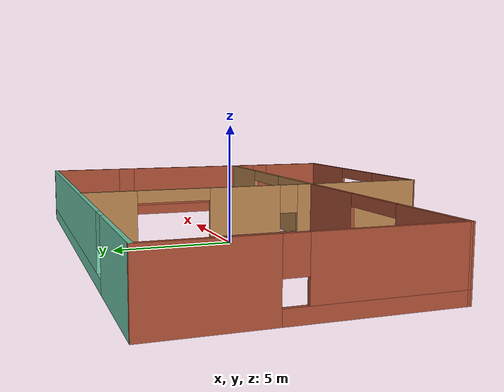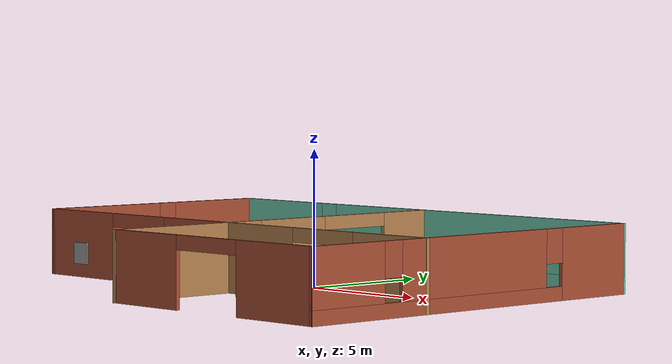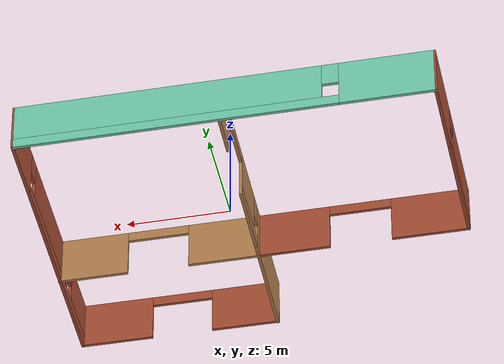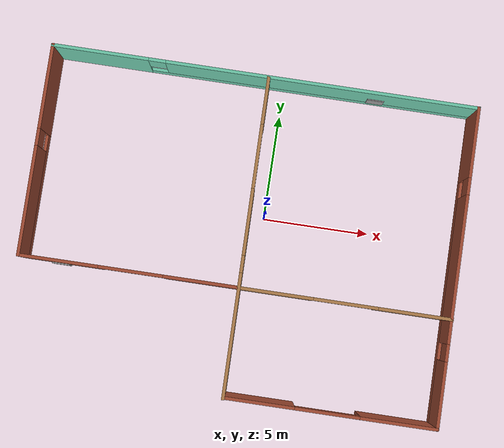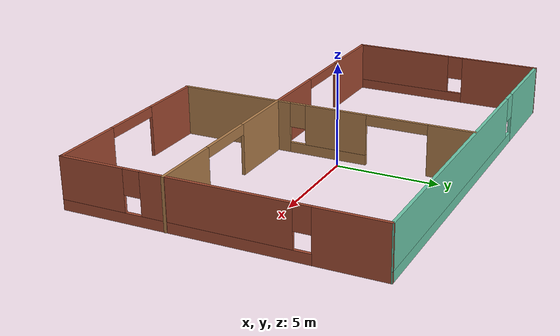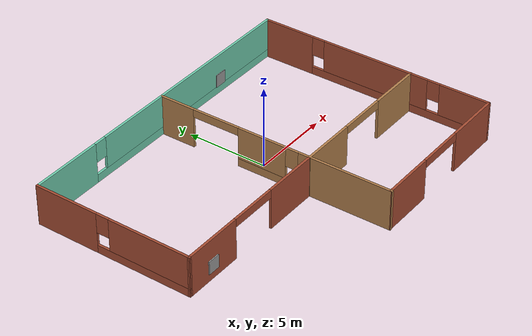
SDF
<?xml version='1.0'?>
<sdf version='1.6'>
  <model name='Building'>
    <pose frame=''>-0.878904 -1.07872 0 0 -0 0</pose>
    <link name='Wall_0'>
      <pose frame=''>-0.035596 7.44422 0 0 -0 -0.001555</pose>
      <visual name='Wall_0_Visual_0'>
        <pose frame=''>-7.76242 0 1.25 0 -0 0</pose>
        <geometry>
          <box>
            <size>4.564 0.15 2.5</size>
          </box>
        </geometry>
        <material>
          <script>
            <uri>file://media/materials/scripts/gazebo.material</uri>
            <name>Gazebo/Grey</name>
          </script>
          <ambient>0.435294 0.796078 0.67451 1</ambient>
        </material>
        <meta>
          <layer>0</layer>
        </meta>
      </visual>
      <collision name='Wall_0_Collision_0'>
        <geometry>
          <box>
            <size>4.564 0.15 2.5</size>
          </box>
        </geometry>
        <pose frame=''>-7.76242 0 1.25 0 -0 0</pose>
      </collision>
      <visual name='Wall_0_Visual_1'>
        <pose frame=''>2.282 0 0.25 0 -0 0</pose>
        <geometry>
          <box>
            <size>15.5248 0.15 0.5</size>
          </box>
        </geometry>
        <material>
          <script>
            <uri>file://media/materials/scripts/gazebo.material</uri>
            <name>Gazebo/Grey</name>
          </script>
          <ambient>0.435294 0.796078 0.67451 1</ambient>
        </material>
        <meta>
          <layer>0</layer>
        </meta>
      </visual>
      <collision name='Wall_0_Collision_1'>
        <geometry>
          <box>
            <size>15.5248 0.15 0.5</size>
          </box>
        </geometry>
        <pose frame=''>2.282 0 0.25 0 -0 0</pose>
      </collision>
      <visual name='Wall_0_Visual_2'>
        <pose frame=''>2.682 0 1.5 0 -0 0</pose>
        <geometry>
          <box>
            <size>14.7248 0.15 2</size>
          </box>
        </geometry>
        <material>
          <script>
            <uri>file://media/materials/scripts/gazebo.material</uri>
            <name>Gazebo/Grey</name>
          </script>
          <ambient>0.435294 0.796078 0.67451 1</ambient>
        </material>
        <meta>
          <layer>0</layer>
        </meta>
      </visual>
      <collision name='Wall_0_Collision_2'>
        <geometry>
          <box>
            <size>14.7248 0.15 2</size>
          </box>
        </geometry>
        <pose frame=''>2.682 0 1.5 0 -0 0</pose>
      </collision>
      <visual name='Wall_0_Visual_3'>
        <pose frame=''>-5.08042 0 1.9 0 -0 0</pose>
        <geometry>
          <box>
            <size>0.8 0.15 1.2</size>
          </box>
        </geometry>
        <material>
          <script>
            <uri>file://media/materials/scripts/gazebo.material</uri>
            <name>Gazebo/Grey</name>
          </script>
          <ambient>0.435294 0.796078 0.67451 1</ambient>
        </material>
        <meta>
          <layer>0</layer>
        </meta>
      </visual>
      <collision name='Wall_0_Collision_3'>
        <geometry>
          <box>
            <size>0.8 0.15 1.2</size>
          </box>
        </geometry>
        <pose frame=''>-5.08042 0 1.9 0 -0 0</pose>
      </collision>
    </link>
    <link name='Wall_10'>
      <pose frame=''>0.170743 -0.034647 0 0 -0 1.57755</pose>
      <visual name='Wall_10_Visual_0'>
        <pose frame=''>-4.58028 0 1.25 0 -0 0</pose>
        <geometry>
          <box>
            <size>5.83943 0.15 2.5</size>
          </box>
        </geometry>
        <material>
          <script>
            <uri>file://media/materials/scripts/gazebo.material</uri>
            <name>Gazebo/Wood</name>
          </script>
          <ambient>1 1 1 1</ambient>
        </material>
        <meta>
          <layer>0</layer>
        </meta>
      </visual>
      <collision name='Wall_10_Collision_0'>
        <geometry>
          <box>
            <size>5.83943 0.15 2.5</size>
          </box>
        </geometry>
        <pose frame=''>-4.58028 0 1.25 0 -0 0</pose>
      </collision>
      <visual name='Wall_10_Visual_1'>
        <pose frame=''>6.37599 0 1.25 0 -0 0</pose>
        <geometry>
          <box>
            <size>2.24801 0.15 2.5</size>
          </box>
        </geometry>
        <material>
          <script>
            <uri>file://media/materials/scripts/gazebo.material</uri>
            <name>Gazebo/Wood</name>
          </script>
          <ambient>1 1 1 1</ambient>
        </material>
        <meta>
          <layer>0</layer>
        </meta>
      </visual>
      <collision name='Wall_10_Collision_1'>
        <geometry>
          <box>
            <size>2.24801 0.15 2.5</size>
          </box>
        </geometry>
        <pose frame=''>6.37599 0 1.25 0 -0 0</pose>
      </collision>
      <visual name='Wall_10_Visual_2'>
        <pose frame=''>0.29571 0 0.25 0 -0 0</pose>
        <geometry>
          <box>
            <size>3.91255 0.15 0.5</size>
          </box>
        </geometry>
        <material>
          <script>
            <uri>file://media/materials/scripts/gazebo.material</uri>
            <name>Gazebo/Wood</name>
          </script>
          <ambient>1 1 1 1</ambient>
        </material>
        <meta>
          <layer>0</layer>
        </meta>
      </visual>
      <collision name='Wall_10_Collision_2'>
        <geometry>
          <box>
            <size>3.91255 0.15 0.5</size>
          </box>
        </geometry>
        <pose frame=''>0.29571 0 0.25 0 -0 0</pose>
      </collision>
      <visual name='Wall_10_Visual_3'>
        <pose frame=''>0.69571 0 1.5 0 -0 0</pose>
        <geometry>
          <box>
            <size>3.11255 0.15 2</size>
          </box>
        </geometry>
        <material>
          <script>
            <uri>file://media/materials/scripts/gazebo.material</uri>
            <name>Gazebo/Wood</name>
          </script>
          <ambient>1 1 1 1</ambient>
        </material>
        <meta>
          <layer>0</layer>
        </meta>
      </visual>
      <collision name='Wall_10_Collision_3'>
        <geometry>
          <box>
            <size>3.11255 0.15 2</size>
          </box>
        </geometry>
        <pose frame=''>0.69571 0 1.5 0 -0 0</pose>
      </collision>
      <visual name='Wall_10_Visual_4'>
        <pose frame=''>-1.26057 0 1.9 0 -0 0</pose>
        <geometry>
          <box>
            <size>0.8 0.15 1.2</size>
          </box>
        </geometry>
        <material>
          <script>
            <uri>file://media/materials/scripts/gazebo.material</uri>
            <name>Gazebo/Wood</name>
          </script>
          <ambient>1 1 1 1</ambient>
        </material>
        <meta>
          <layer>0</layer>
        </meta>
      </visual>
      <collision name='Wall_10_Collision_4'>
        <geometry>
          <box>
            <size>0.8 0.15 1.2</size>
          </box>
        </geometry>
        <pose frame=''>-1.26057 0 1.9 0 -0 0</pose>
      </collision>
      <visual name='Wall_10_Visual_5'>
        <pose frame=''>3.75199 0 2.25 0 -0 0</pose>
        <geometry>
          <box>
            <size>3 0.15 0.5</size>
          </box>
        </geometry>
        <material>
          <script>
            <uri>file://media/materials/scripts/gazebo.material</uri>
            <name>Gazebo/Wood</name>
          </script>
          <ambient>1 1 1 1</ambient>
        </material>
        <meta>
          <layer>0</layer>
        </meta>
      </visual>
      <collision name='Wall_10_Collision_5'>
        <geometry>
          <box>
            <size>3 0.15 0.5</size>
          </box>
        </geometry>
        <pose frame=''>3.75199 0 2.25 0 -0 0</pose>
      </collision>
    </link>
    <link name='Wall_12'>
      <pose frame=''>5.0939 -2.39528 0 0 -0 0</pose>
      <visual name='Wall_12_Visual_0'>
        <pose frame=''>-3.23118 0 1.25 0 -0 0</pose>
        <geometry>
          <box>
            <size>3.53764 0.15 2.5</size>
          </box>
        </geometry>
        <material>
          <script>
            <uri>file://media/materials/scripts/gazebo.material</uri>
            <name>Gazebo/Wood</name>
          </script>
          <ambient>1 1 1 1</ambient>
        </material>
        <meta>
          <layer>0</layer>
        </meta>
      </visual>
      <collision name='Wall_12_Collision_0'>
        <geometry>
          <box>
            <size>3.53764 0.15 2.5</size>
          </box>
        </geometry>
        <pose frame=''>-3.23118 0 1.25 0 -0 0</pose>
      </collision>
      <visual name='Wall_12_Visual_1'>
        <pose frame=''>3.26882 0 1.25 0 -0 0</pose>
        <geometry>
          <box>
            <size>3.46236 0.15 2.5</size>
          </box>
        </geometry>
        <material>
          <script>
            <uri>file://media/materials/scripts/gazebo.material</uri>
            <name>Gazebo/Wood</name>
          </script>
          <ambient>1 1 1 1</ambient>
        </material>
        <meta>
          <layer>0</layer>
        </meta>
      </visual>
      <collision name='Wall_12_Collision_1'>
        <geometry>
          <box>
            <size>3.46236 0.15 2.5</size>
          </box>
        </geometry>
        <pose frame=''>3.26882 0 1.25 0 -0 0</pose>
      </collision>
      <visual name='Wall_12_Visual_2'>
        <pose frame=''>0.037642 0 2.25 0 -0 0</pose>
        <geometry>
          <box>
            <size>3 0.15 0.5</size>
          </box>
        </geometry>
        <material>
          <script>
            <uri>file://media/materials/scripts/gazebo.material</uri>
            <name>Gazebo/Wood</name>
          </script>
          <ambient>1 1 1 1</ambient>
        </material>
        <meta>
          <layer>0</layer>
        </meta>
      </visual>
      <collision name='Wall_12_Collision_2'>
        <geometry>
          <box>
            <size>3 0.15 0.5</size>
          </box>
        </geometry>
        <pose frame=''>0.037642 0 2.25 0 -0 0</pose>
      </collision>
    </link>
    <link name='Wall_2'>
      <pose frame=''>-10.0206 2.53472 0 0 -0 -1.57394</pose>
      <visual name='Wall_2_Visual_0'>
        <pose frame=''>-2.98846 0 1.25 0 -0 0</pose>
        <geometry>
          <box>
            <size>4.0232 0.15 2.5</size>
          </box>
        </geometry>
        <material>
          <script>
            <uri>file://media/materials/scripts/gazebo.material</uri>
            <name>Gazebo/Bricks</name>
          </script>
          <ambient>1 1 1 1</ambient>
        </material>
        <meta>
          <layer>0</layer>
        </meta>
      </visual>
      <collision name='Wall_2_Collision_0'>
        <geometry>
          <box>
            <size>4.0232 0.15 2.5</size>
          </box>
        </geometry>
        <pose frame=''>-2.98846 0 1.25 0 -0 0</pose>
      </collision>
      <visual name='Wall_2_Visual_1'>
        <pose frame=''>2.0116 0 0.25 0 -0 0</pose>
        <geometry>
          <box>
            <size>5.97691 0.15 0.5</size>
          </box>
        </geometry>
        <material>
          <script>
            <uri>file://media/materials/scripts/gazebo.material</uri>
            <name>Gazebo/Bricks</name>
          </script>
          <ambient>1 1 1 1</ambient>
        </material>
        <meta>
          <layer>0</layer>
        </meta>
      </visual>
      <collision name='Wall_2_Collision_1'>
        <geometry>
          <box>
            <size>5.97691 0.15 0.5</size>
          </box>
        </geometry>
        <pose frame=''>2.0116 0 0.25 0 -0 0</pose>
      </collision>
      <visual name='Wall_2_Visual_2'>
        <pose frame=''>2.4116 0 1.5 0 -0 0</pose>
        <geometry>
          <box>
            <size>5.17691 0.15 2</size>
          </box>
        </geometry>
        <material>
          <script>
            <uri>file://media/materials/scripts/gazebo.material</uri>
            <name>Gazebo/Bricks</name>
          </script>
          <ambient>1 1 1 1</ambient>
        </material>
        <meta>
          <layer>0</layer>
        </meta>
      </visual>
      <collision name='Wall_2_Collision_2'>
        <geometry>
          <box>
            <size>5.17691 0.15 2</size>
          </box>
        </geometry>
        <pose frame=''>2.4116 0 1.5 0 -0 0</pose>
      </collision>
      <visual name='Wall_2_Visual_3'>
        <pose frame=''>-0.576857 0 1.9 0 -0 0</pose>
        <geometry>
          <box>
            <size>0.8 0.15 1.2</size>
          </box>
        </geometry>
        <material>
          <script>
            <uri>file://media/materials/scripts/gazebo.material</uri>
            <name>Gazebo/Bricks</name>
          </script>
          <ambient>1 1 1 1</ambient>
        </material>
        <meta>
          <layer>0</layer>
        </meta>
      </visual>
      <collision name='Wall_2_Collision_3'>
        <geometry>
          <box>
            <size>0.8 0.15 1.2</size>
          </box>
        </geometry>
        <pose frame=''>-0.576857 0 1.9 0 -0 0</pose>
      </collision>
    </link>
    <link name='Wall_4'>
      <pose frame=''>-4.9861 -2.39028 0 0 -0 0</pose>
      <visual name='Wall_4_Visual_0'>
        <pose frame=''>-3.23437 0 1.25 0 -0 0</pose>
        <geometry>
          <box>
            <size>3.78126 0.15 2.5</size>
          </box>
        </geometry>
        <material>
          <script>
            <uri>file://media/materials/scripts/gazebo.material</uri>
            <name>Gazebo/Bricks</name>
          </script>
          <ambient>1 1 1 1</ambient>
        </material>
        <meta>
          <layer>0</layer>
        </meta>
      </visual>
      <collision name='Wall_4_Collision_0'>
        <geometry>
          <box>
            <size>3.78126 0.15 2.5</size>
          </box>
        </geometry>
        <pose frame=''>-3.23437 0 1.25 0 -0 0</pose>
      </collision>
      <visual name='Wall_4_Visual_1'>
        <pose frame=''>3.39063 0 1.25 0 -0 0</pose>
        <geometry>
          <box>
            <size>3.46874 0.15 2.5</size>
          </box>
        </geometry>
        <material>
          <script>
            <uri>file://media/materials/scripts/gazebo.material</uri>
            <name>Gazebo/Bricks</name>
          </script>
          <ambient>1 1 1 1</ambient>
        </material>
        <meta>
          <layer>0</layer>
        </meta>
      </visual>
      <collision name='Wall_4_Collision_1'>
        <geometry>
          <box>
            <size>3.46874 0.15 2.5</size>
          </box>
        </geometry>
        <pose frame=''>3.39063 0 1.25 0 -0 0</pose>
      </collision>
      <visual name='Wall_4_Visual_2'>
        <pose frame=''>0.15626 0 2.25 0 -0 0</pose>
        <geometry>
          <box>
            <size>3 0.15 0.5</size>
          </box>
        </geometry>
        <material>
          <script>
            <uri>file://media/materials/scripts/gazebo.material</uri>
            <name>Gazebo/Bricks</name>
          </script>
          <ambient>1 1 1 1</ambient>
        </material>
        <meta>
          <layer>0</layer>
        </meta>
      </visual>
      <collision name='Wall_4_Collision_2'>
        <geometry>
          <box>
            <size>3 0.15 0.5</size>
          </box>
        </geometry>
        <pose frame=''>0.15626 0 2.25 0 -0 0</pose>
      </collision>
    </link>
    <link name='Wall_6'>
      <pose frame=''>9.98486 0.004038 0 0 -0 -1.56393</pose>
      <visual name='Wall_6_Visual_0'>
        <pose frame=''>-5.83702 0 1.25 0 -0 0</pose>
        <geometry>
          <box>
            <size>3.32597 0.15 2.5</size>
          </box>
        </geometry>
        <material>
          <script>
            <uri>file://media/materials/scripts/gazebo.material</uri>
            <name>Gazebo/Bricks</name>
          </script>
          <ambient>1 1 1 1</ambient>
        </material>
        <meta>
          <layer>0</layer>
        </meta>
      </visual>
      <collision name='Wall_6_Collision_0'>
        <geometry>
          <box>
            <size>3.32597 0.15 2.5</size>
          </box>
        </geometry>
        <pose frame=''>-5.83702 0 1.25 0 -0 0</pose>
      </collision>
      <visual name='Wall_6_Visual_1'>
        <pose frame=''>1.66298 0 0.25 0 -0 0</pose>
        <geometry>
          <box>
            <size>11.674 0.15 0.5</size>
          </box>
        </geometry>
        <material>
          <script>
            <uri>file://media/materials/scripts/gazebo.material</uri>
            <name>Gazebo/Bricks</name>
          </script>
          <ambient>1 1 1 1</ambient>
        </material>
        <meta>
          <layer>0</layer>
        </meta>
      </visual>
      <collision name='Wall_6_Collision_1'>
        <geometry>
          <box>
            <size>11.674 0.15 0.5</size>
          </box>
        </geometry>
        <pose frame=''>1.66298 0 0.25 0 -0 0</pose>
      </collision>
      <visual name='Wall_6_Visual_2'>
        <pose frame=''>0.080934 0 1.5 0 -0 0</pose>
        <geometry>
          <box>
            <size>6.90993 0.15 2</size>
          </box>
        </geometry>
        <material>
          <script>
            <uri>file://media/materials/scripts/gazebo.material</uri>
            <name>Gazebo/Bricks</name>
          </script>
          <ambient>1 1 1 1</ambient>
        </material>
        <meta>
          <layer>0</layer>
        </meta>
      </visual>
      <collision name='Wall_6_Collision_2'>
        <geometry>
          <box>
            <size>6.90993 0.15 2</size>
          </box>
        </geometry>
        <pose frame=''>0.080934 0 1.5 0 -0 0</pose>
      </collision>
      <visual name='Wall_6_Visual_3'>
        <pose frame=''>5.91795 0 1.5 0 -0 0</pose>
        <geometry>
          <box>
            <size>3.1641 0.15 2</size>
          </box>
        </geometry>
        <material>
          <script>
            <uri>file://media/materials/scripts/gazebo.material</uri>
            <name>Gazebo/Bricks</name>
          </script>
          <ambient>1 1 1 1</ambient>
        </material>
        <meta>
          <layer>0</layer>
        </meta>
      </visual>
      <collision name='Wall_6_Collision_3'>
        <geometry>
          <box>
            <size>3.1641 0.15 2</size>
          </box>
        </geometry>
        <pose frame=''>5.91795 0 1.5 0 -0 0</pose>
      </collision>
      <visual name='Wall_6_Visual_4'>
        <pose frame=''>-3.77403 0 1.9 0 -0 0</pose>
        <geometry>
          <box>
            <size>0.8 0.15 1.2</size>
          </box>
        </geometry>
        <material>
          <script>
            <uri>file://media/materials/scripts/gazebo.material</uri>
            <name>Gazebo/Bricks</name>
          </script>
          <ambient>1 1 1 1</ambient>
        </material>
        <meta>
          <layer>0</layer>
        </meta>
      </visual>
      <collision name='Wall_6_Collision_4'>
        <geometry>
          <box>
            <size>0.8 0.15 1.2</size>
          </box>
        </geometry>
        <pose frame=''>-3.77403 0 1.9 0 -0 0</pose>
      </collision>
      <visual name='Wall_6_Visual_5'>
        <pose frame=''>3.9359 0 1.9 0 -0 0</pose>
        <geometry>
          <box>
            <size>0.8 0.15 1.2</size>
          </box>
        </geometry>
        <material>
          <script>
            <uri>file://media/materials/scripts/gazebo.material</uri>
            <name>Gazebo/Bricks</name>
          </script>
          <ambient>1 1 1 1</ambient>
        </material>
        <meta>
          <layer>0</layer>
        </meta>
      </visual>
      <collision name='Wall_6_Collision_5'>
        <geometry>
          <box>
            <size>0.8 0.15 1.2</size>
          </box>
        </geometry>
        <pose frame=''>3.9359 0 1.9 0 -0 0</pose>
      </collision>
    </link>
    <link name='Wall_8'>
      <pose frame=''>5.11307 -7.42476 0 0 -0 -3.14075</pose>
      <visual name='Wall_8_Visual_0'>
        <pose frame=''>-3.17532 0 1.25 0 -0 0</pose>
        <geometry>
          <box>
            <size>3.58369 0.15 2.5</size>
          </box>
        </geometry>
        <material>
          <script>
            <uri>file://media/materials/scripts/gazebo.material</uri>
            <name>Gazebo/Bricks</name>
          </script>
          <ambient>1 1 1 1</ambient>
        </material>
        <meta>
          <layer>0</layer>
        </meta>
      </visual>
      <collision name='Wall_8_Collision_0'>
        <geometry>
          <box>
            <size>3.58369 0.15 2.5</size>
          </box>
        </geometry>
        <pose frame=''>-3.17532 0 1.25 0 -0 0</pose>
      </collision>
      <visual name='Wall_8_Visual_1'>
        <pose frame=''>3.29184 0 1.25 0 -0 0</pose>
        <geometry>
          <box>
            <size>3.35064 0.15 2.5</size>
          </box>
        </geometry>
        <material>
          <script>
            <uri>file://media/materials/scripts/gazebo.material</uri>
            <name>Gazebo/Bricks</name>
          </script>
          <ambient>1 1 1 1</ambient>
        </material>
        <meta>
          <layer>0</layer>
        </meta>
      </visual>
      <collision name='Wall_8_Collision_1'>
        <geometry>
          <box>
            <size>3.35064 0.15 2.5</size>
          </box>
        </geometry>
        <pose frame=''>3.29184 0 1.25 0 -0 0</pose>
      </collision>
      <visual name='Wall_8_Visual_2'>
        <pose frame=''>0.116526 0 2.25 0 -0 0</pose>
        <geometry>
          <box>
            <size>3 0.15 0.5</size>
          </box>
        </geometry>
        <material>
          <script>
            <uri>file://media/materials/scripts/gazebo.material</uri>
            <name>Gazebo/Bricks</name>
          </script>
          <ambient>1 1 1 1</ambient>
        </material>
        <meta>
          <layer>0</layer>
        </meta>
      </visual>
      <collision name='Wall_8_Collision_2'>
        <geometry>
          <box>
            <size>3 0.15 0.5</size>
          </box>
        </geometry>
        <pose frame=''>0.116526 0 2.25 0 -0 0</pose>
      </collision>
    </link>
    <link name='Window_3'>
      <collision name='Window_3_Collision'>
        <geometry>
          <box>
            <size>0.8 0.17 0.8</size>
          </box>
        </geometry>
        <pose frame=''>0 0 0.4 0 -0 0</pose>
      </collision>
      <visual name='Window_3_Visual'>
        <pose frame=''>0 0 0.4 0 -0 0</pose>
        <geometry>
          <box>
            <size>0.8 0.17 0.8</size>
          </box>
        </geometry>
        <material>
          <script>
            <uri>file://media/materials/scripts/gazebo.material</uri>
            <name>Gazebo/Grey</name>
          </script>
        </material>
      </visual>
      <pose frame=''>5.26898 7.39825 0.5 0 -0 0</pose>
    </link>
    <link name='Window_5'>
      <collision name='Window_5_Collision'>
        <geometry>
          <box>
            <size>0.8 0.17 0.8</size>
          </box>
        </geometry>
        <pose frame=''>0 0 0.4 0 -0 0</pose>
      </collision>
      <visual name='Window_5_Visual'>
        <pose frame=''>0 0 0.4 0 -0 0</pose>
        <geometry>
          <box>
            <size>0.8 0.17 0.8</size>
          </box>
        </geometry>
        <material>
          <script>
            <uri>file://media/materials/scripts/gazebo.material</uri>
            <name>Gazebo/Grey</name>
          </script>
        </material>
      </visual>
      <pose frame=''>-8.24392 -2.44382 0.5 0 -0 0</pose>
    </link>
    <static>1</static>
  </model>
</sdf>
